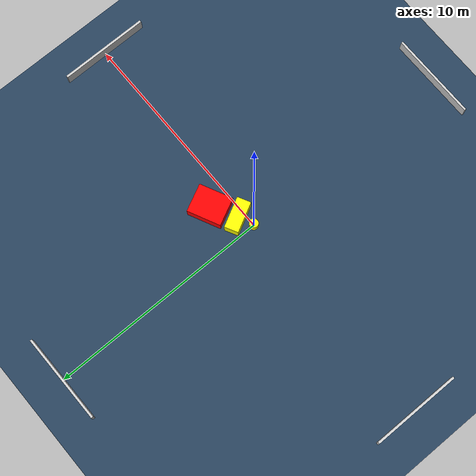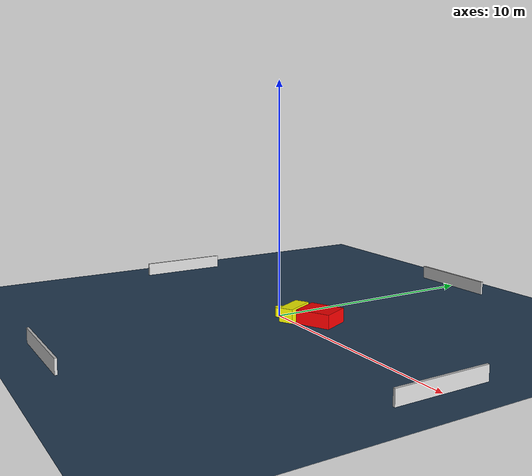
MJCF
<?xml version="1.0" ?>
<mujoco model="generated_environment">
  <option timestep="0.01" integrator="RK4" cone="elliptic"/>
  <default>
    <geom density="1"/>
  </default>
  <asset>
    <texture builtin="gradient" height="3072" name="skybox" rgb1="0.3 0.5 0.7" rgb2="0 0 0" type="skybox" width="512"/>
    <texture builtin="checker" height="300" name="groundplane" rgb1="0.2 0.3 0.4" rgb2="0.1 0.2 0.3" type="2d" width="300"/>
    <material name="groundplane" reflectance="0.2" texrepeat="5 5" texture="groundplane"/>
  </asset>
  <worldbody>
    <light dir="0 0 -1" directional="true" pos="0 0 1.5"/>
    <geom condim="3" friction="0.5 0.005 0.001" material="groundplane" name="floor" pos="0 0 0" size="0 0 0.05" type="plane"/>
    <body name="walls">
      <geom name="wall_1" condim="4" pos="-10.0 0.0 0.3" rgba="0.800000011920929 0.800000011920929 0.800000011920929 1.0" size="0.05 2.0 0.3" type="box"/>
      <geom name="wall_2" condim="4" pos="10.0 0.0 0.3" rgba="0.800000011920929 0.800000011920929 0.800000011920929 1.0" size="0.05 2.0 0.3" type="box"/>
      <geom name="wall_3" condim="4" pos="0.0 -10.0 0.3" rgba="0.800000011920929 0.800000011920929 0.800000011920929 1.0" size="2.0 0.05 0.3" type="box"/>
      <geom name="wall_4" condim="4" pos="0.0 10.0 0.3" rgba="0.800000011920929 0.800000011920929 0.800000011920929 1.0" size="2.0 0.05 0.3" type="box"/>
    </body>
    <body name="robot">
      <joint name="joint_x" type="slide" pos="0 0 0" axis="1 0 0"/>
      <joint name="joint_y" type="slide" pos="0 0 0" axis="0 1 0"/>
      <geom name="robot" type="cylinder" pos="0.0 0.0 0.2" size="0.2 0.2 0.0" mass="5.0" friction="1.0 0.005 0.0001" condim="4" rgba="1.0 1.0 0.0 1.0"/>
    </body>
    <body name="obstacle_1_movable">
      <geom name="obstacle_1_movable" condim="4" pos="0.6648208225815074 0.30987254442999745 0.3" euler="0 0 207.7012198717465" friction="0.0 0.005 0.001" rgba="1.0 1.0 0.0 1.0" size="0.3122374143705919 0.6984036278600747 0.3" type="box" mass="0.1"/>
      <joint type="free"/>
    </body>
    <body name="obstacle_2_static">
      <geom name="obstacle_2_static" condim="4" pos="1.7330849342631893 0.915648830093435 0.3" euler="0 0 206.0300941800368" friction="0.0 0.005 0.001" rgba="1.0 0.0 0.0 1.0" size="0.76130824471568 0.6376477067094174 0.3" type="box"/>
    </body>
  </worldbody>
  <actuator>
    <motor name="actuator_x" joint="joint_x" gear="1" ctrlrange="-1 1"/>
    <motor name="actuator_y" joint="joint_y" gear="1" ctrlrange="-1 1"/>
  </actuator>
</mujoco>
